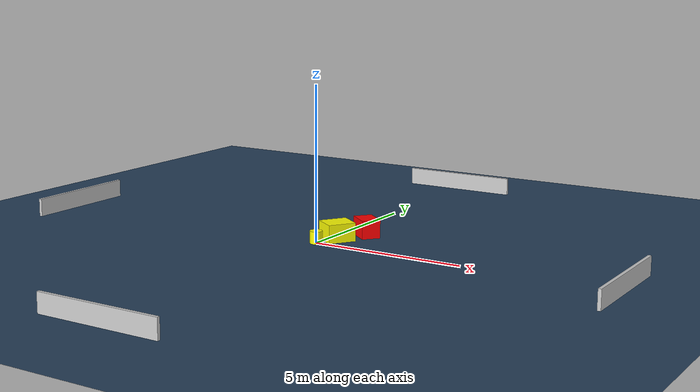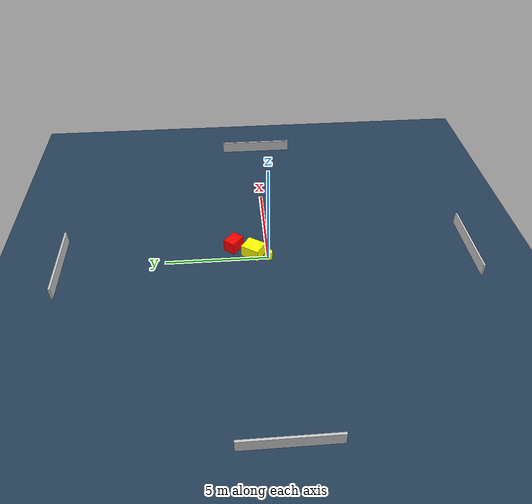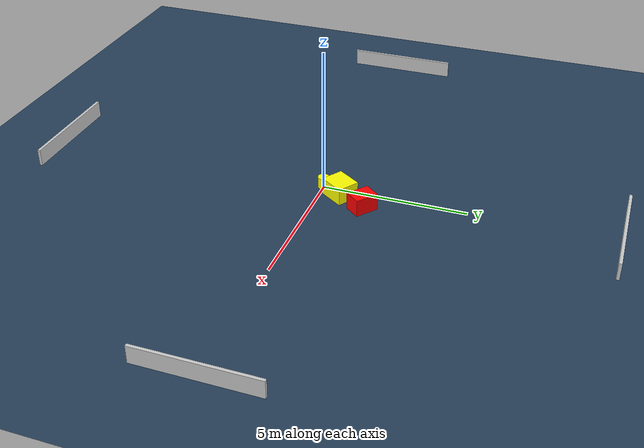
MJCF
<?xml version="1.0" ?>
<mujoco model="generated_environment">
  <option timestep="0.01" integrator="RK4" cone="elliptic"/>
  <default>
    <geom density="1"/>
  </default>
  <asset>
    <texture builtin="gradient" height="3072" name="skybox" rgb1="0.3 0.5 0.7" rgb2="0 0 0" type="skybox" width="512"/>
    <texture builtin="checker" height="300" name="groundplane" rgb1="0.2 0.3 0.4" rgb2="0.1 0.2 0.3" type="2d" width="300"/>
    <material name="groundplane" reflectance="0.2" texrepeat="5 5" texture="groundplane"/>
  </asset>
  <worldbody>
    <light dir="0 0 -1" directional="true" pos="0 0 1.5"/>
    <geom condim="3" friction="0.5 0.005 0.001" material="groundplane" name="floor" pos="0 0 0" size="0 0 0.05" type="plane"/>
    <body name="walls">
      <geom name="wall_1" condim="4" pos="-10.0 0.0 0.3" rgba="0.800000011920929 0.800000011920929 0.800000011920929 1.0" size="0.05 2.0 0.3" type="box"/>
      <geom name="wall_2" condim="4" pos="10.0 0.0 0.3" rgba="0.800000011920929 0.800000011920929 0.800000011920929 1.0" size="0.05 2.0 0.3" type="box"/>
      <geom name="wall_3" condim="4" pos="0.0 -10.0 0.3" rgba="0.800000011920929 0.800000011920929 0.800000011920929 1.0" size="2.0 0.05 0.3" type="box"/>
      <geom name="wall_4" condim="4" pos="0.0 10.0 0.3" rgba="0.800000011920929 0.800000011920929 0.800000011920929 1.0" size="2.0 0.05 0.3" type="box"/>
    </body>
    <body name="robot">
      <joint name="joint_x" type="slide" pos="0 0 0" axis="1 0 0"/>
      <joint name="joint_y" type="slide" pos="0 0 0" axis="0 1 0"/>
      <geom name="robot" type="cylinder" pos="0.0 0.0 0.2" size="0.2 0.2 0.0" mass="5.0" friction="1.0 0.005 0.0001" condim="4" rgba="1.0 1.0 0.0 1.0"/>
    </body>
    <body name="obstacle_1_movable">
      <geom name="obstacle_1_movable" condim="4" pos="0.3430849599431838 0.7044385764289084 0.3" euler="0 0 146.08591596491408" friction="0.0 0.005 0.001" rgba="1.0 1.0 0.0 1.0" size="0.398000722590129 0.4623781517585772 0.3" type="box" mass="0.1"/>
      <joint type="free"/>
    </body>
    <body name="obstacle_2_static">
      <geom name="obstacle_2_static" condim="4" pos="0.8746917992325103 1.6511477079933938 0.3" euler="0 0 50.88090738474933" friction="0.0 0.005 0.001" rgba="1.0 0.0 0.0 1.0" size="0.30476168930259273 0.4066991729378144 0.3" type="box"/>
    </body>
  </worldbody>
  <actuator>
    <motor name="actuator_x" joint="joint_x" gear="1" ctrlrange="-1 1"/>
    <motor name="actuator_y" joint="joint_y" gear="1" ctrlrange="-1 1"/>
  </actuator>
</mujoco>
